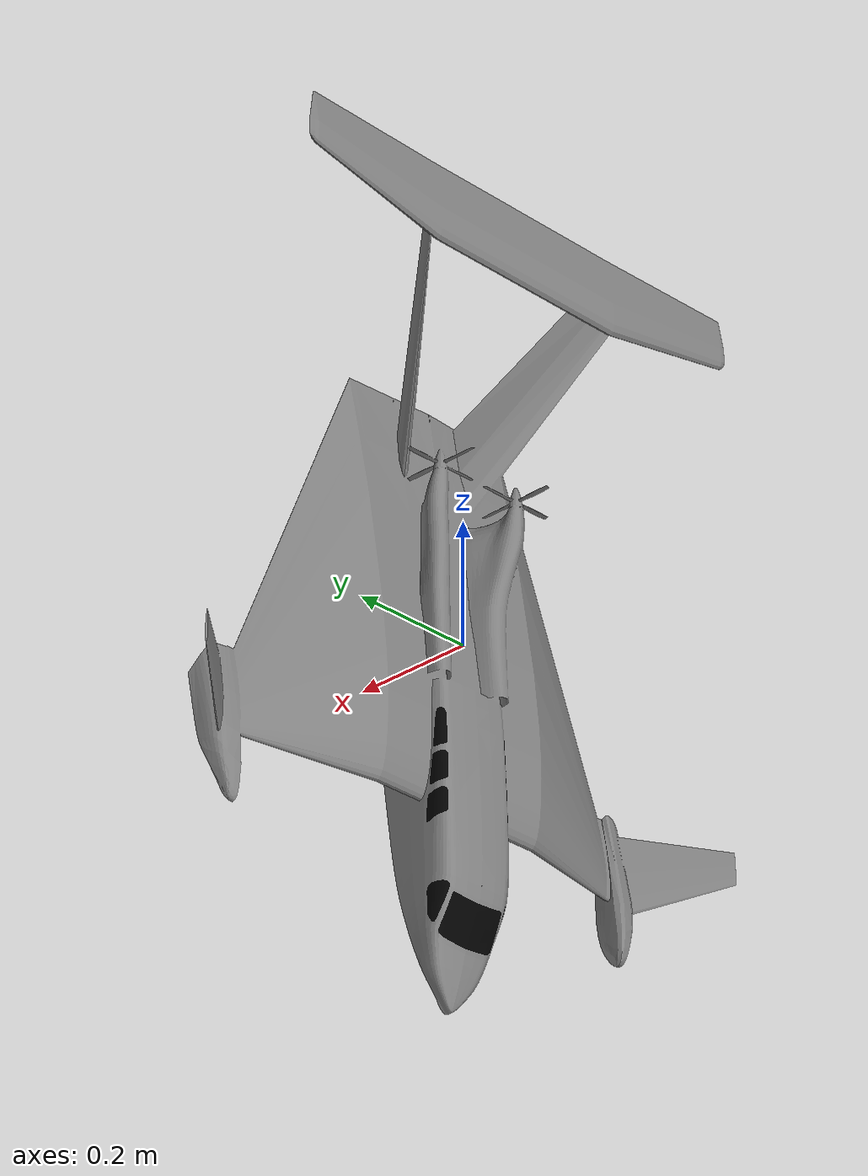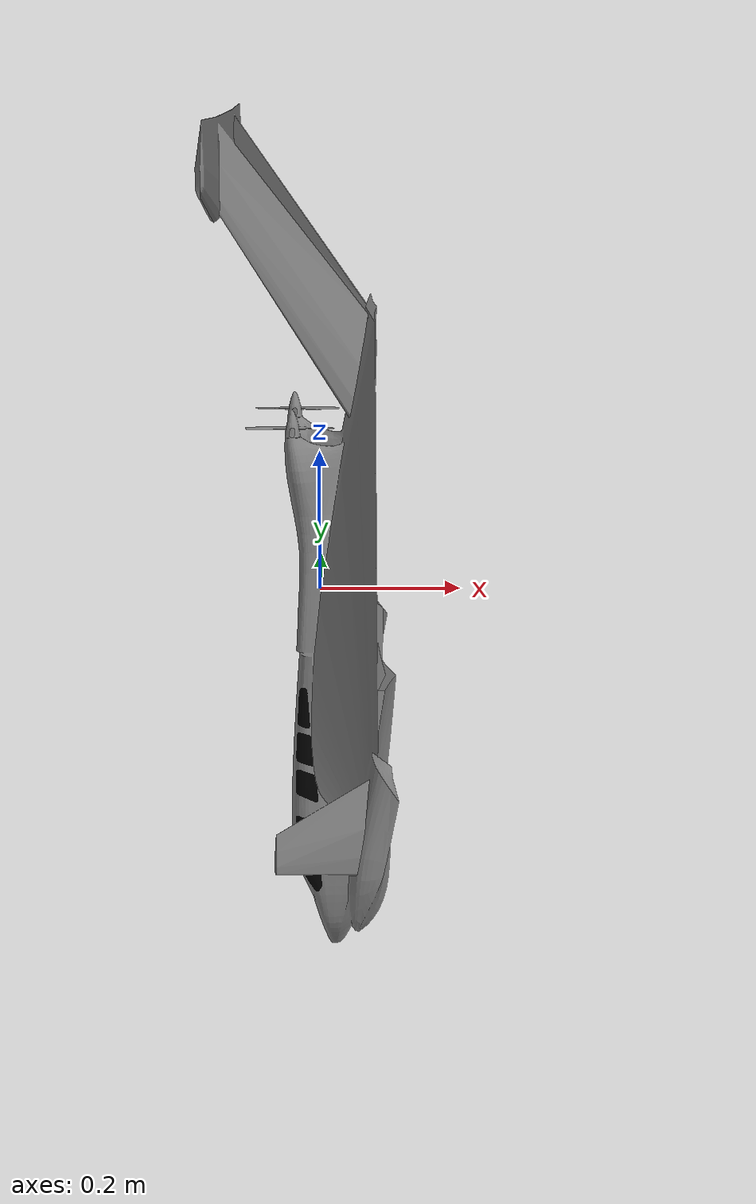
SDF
<?xml version="1.0" ?>
<sdf version="1.6">
  <model name="mi_ekranoplano">
    <static>true</static>
    <link name="base_link">
      <visual name="visual">
        <!-- Rotación aplicada:
             Roll: 1.5708 (para que no esté acostado)
             Pitch: 0
             Yaw: -1.5708 (para que la nariz mire al eje X) -->
        <pose>0 0 0 1.5708 0 -1.5708</pose>
        <geometry>
          <mesh>
            <uri>model://mi_ekranoplano/meshes/AIRFISH-8_EKRANOPLANO.dae</uri>
            <scale>1 1 1</scale>
          </mesh>
        </geometry>
      </visual>

      <!-- Es buena práctica añadir el collision box con la misma pose -->
      <collision name="collision">
        <pose>0 0 0 1.5708 0 -1.5708</pose>
        <geometry>
          <mesh>
            <uri>model://mi_ekranoplano/meshes/AIRFISH-8_EKRANOPLANO.dae</uri>
            <scale>1 1 1</scale>
          </mesh>
        </geometry>
      </collision>

    </link>
  </model>
</sdf>
